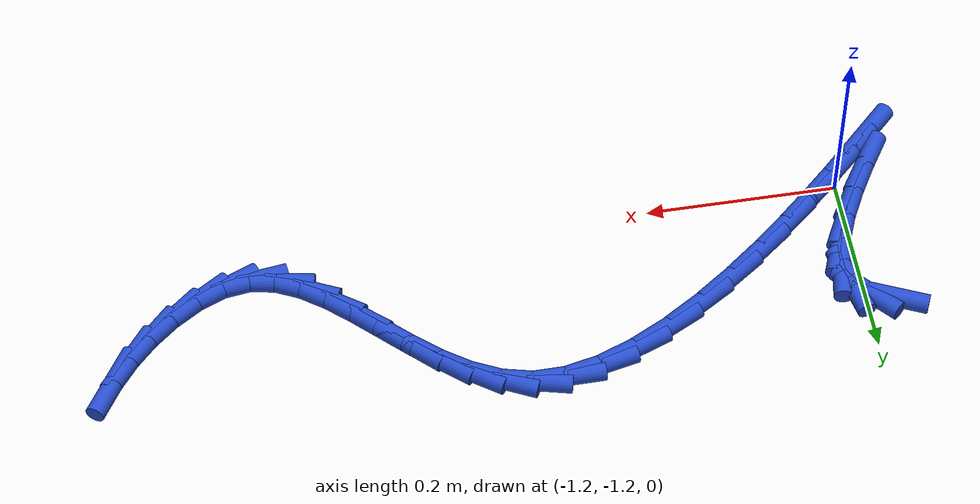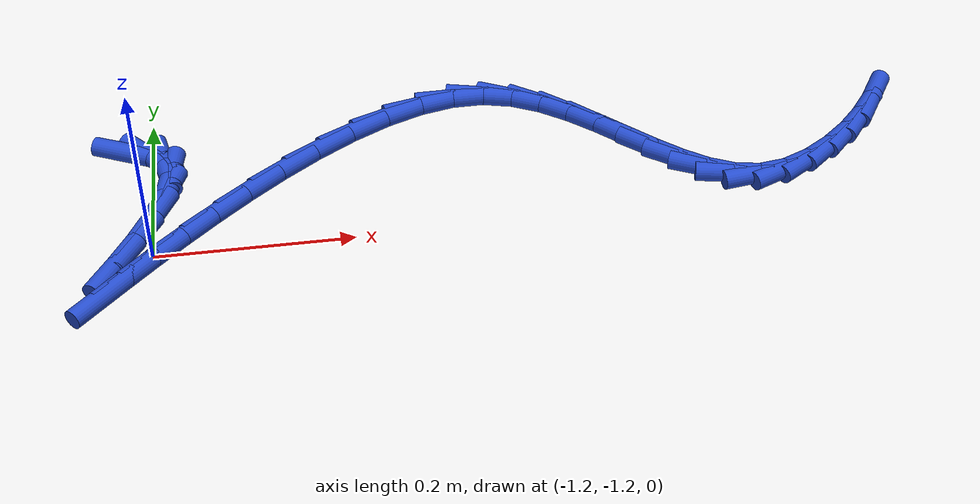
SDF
<sdf version="1.6">
 <world name="default">
  <model name="ground_plane">
   <static>1</static>
   <link name="link">
    <collision name="collision">
     <geometry><plane><normal>0 0 1</normal><size>100 100</size></plane></geometry>
     <surface><friction><ode><mu>100</mu><mu2>50</mu2></ode></friction></surface>
    </collision>
    <visual name="visual">
     <cast_shadows>0</cast_shadows>
     <geometry><plane><normal>0 0 1</normal><size>100 100</size></plane></geometry>
     <material>
      <script><uri>file://media/materials/scripts/gazebo.material</uri><name>Gazebo/WhiteGlow</name></script>
     </material>
    </visual>
   </link>
  </model>
  <model name="line">
   <link name="link_210">
    <pose>-1.2225279009601688 -1.0498489963877908 0.01 0 1.57 -0.4290302587245111</pose>
    <collision name="collision">
     <geometry><cylinder><radius>0.01</radius><length>0.08</length></cylinder></geometry>
    </collision>
    <visual name="visual">
     <material>
      <script><name>Gazebo/Blue</name><uri>file://media/materials/scripts/gazebo.material</uri></script>
     </material>
     <geometry><cylinder><radius>0.01</radius><length>0.08</length></cylinder></geometry>
    </visual>
   </link>
   <link name="link_211">
    <pose>-1.2009225524633869 -1.0597323162773784 0.01 0 1.57 -0.8404976839779542</pose>
    <collision name="collision">
     <geometry><cylinder><radius>0.01</radius><length>0.08</length></cylinder></geometry>
    </collision>
    <visual name="visual">
     <material>
      <script><name>Gazebo/Blue</name><uri>file://media/materials/scripts/gazebo.material</uri></script>
     </material>
     <geometry><cylinder><radius>0.01</radius><length>0.08</length></cylinder></geometry>
    </visual>
   </link>
   <link name="link_212">
    <pose>-1.1873392073120013 -1.0749015181759876 0.01 0 1.57 -1.3666802365372464</pose>
    <collision name="collision">
     <geometry><cylinder><radius>0.01</radius><length>0.08</length></cylinder></geometry>
    </collision>
    <visual name="visual">
     <material>
      <script><name>Gazebo/Blue</name><uri>file://media/materials/scripts/gazebo.material</uri></script>
     </material>
     <geometry><cylinder><radius>0.01</radius><length>0.08</length></cylinder></geometry>
    </visual>
   </link>
   <link name="link_213">
    <pose>-1.1829490584594335 -1.096110083108619 0.01 0 1.57 1.386940928968811</pose>
    <collision name="collision">
     <geometry><cylinder><radius>0.01</radius><length>0.08</length></cylinder></geometry>
    </collision>
    <visual name="visual">
     <material>
      <script><name>Gazebo/Blue</name><uri>file://media/materials/scripts/gazebo.material</uri></script>
     </material>
     <geometry><cylinder><radius>0.01</radius><length>0.08</length></cylinder></geometry>
    </visual>
   </link>
   <link name="link_214">
    <pose>-1.1880140870052704 -1.1233479496688061 0.01 0 1.57 1.1951503084563095</pose>
    <collision name="collision">
     <geometry><cylinder><radius>0.01</radius><length>0.08</length></cylinder></geometry>
    </collision>
    <visual name="visual">
     <material>
      <script><name>Gazebo/Blue</name><uri>file://media/materials/scripts/gazebo.material</uri></script>
     </material>
     <geometry><cylinder><radius>0.01</radius><length>0.08</length></cylinder></geometry>
    </visual>
   </link>
   <link name="link_215">
    <pose>-1.2003045617299777 -1.154512553944051 0.01 0 1.57 1.093843876870561</pose>
    <collision name="collision">
     <geometry><cylinder><radius>0.01</radius><length>0.08</length></cylinder></geometry>
    </collision>
    <visual name="visual">
     <material>
      <script><name>Gazebo/Blue</name><uri>file://media/materials/scripts/gazebo.material</uri></script>
     </material>
     <geometry><cylinder><radius>0.01</radius><length>0.08</length></cylinder></geometry>
    </visual>
   </link>
   <link name="link_216">
    <pose>-1.2171677199102457 -1.187146076531491 0.01 0 1.57 1.0351233015792394</pose>
    <collision name="collision">
     <geometry><cylinder><radius>0.01</radius><length>0.08</length></cylinder></geometry>
    </collision>
    <visual name="visual">
     <material>
      <script><name>Gazebo/Blue</name><uri>file://media/materials/scripts/gazebo.material</uri></script>
     </material>
     <geometry><cylinder><radius>0.01</radius><length>0.08</length></cylinder></geometry>
    </visual>
   </link>
   <link name="link_217">
    <pose>-1.235950798822768 -1.2187906980282661 0.01 0 1.57 1.0013930658920076</pose>
    <collision name="collision">
     <geometry><cylinder><radius>0.01</radius><length>0.08</length></cylinder></geometry>
    </collision>
    <visual name="visual">
     <material>
      <script><name>Gazebo/Blue</name><uri>file://media/materials/scripts/gazebo.material</uri></script>
     </material>
     <geometry><cylinder><radius>0.01</radius><length>0.08</length></cylinder></geometry>
    </visual>
   </link>
   <link name="link_224">
    <pose>-1.2457346479555746 -1.2579630456814002 0.01 0 1.57 0.777487522542488</pose>
    <collision name="collision">
     <geometry><cylinder><radius>0.01</radius><length>0.08</length></cylinder></geometry>
    </collision>
    <visual name="visual">
     <material>
      <script><name>Gazebo/Blue</name><uri>file://media/materials/scripts/gazebo.material</uri></script>
     </material>
     <geometry><cylinder><radius>0.01</radius><length>0.08</length></cylinder></geometry>
    </visual>
   </link>
   <link name="link_225">
    <pose>-1.2242542176674498 -1.2368198029956556 0.01 0 1.57 0.7687051424640068</pose>
    <collision name="collision">
     <geometry><cylinder><radius>0.01</radius><length>0.08</length></cylinder></geometry>
    </collision>
    <visual name="visual">
     <material>
      <script><name>Gazebo/Blue</name><uri>file://media/materials/scripts/gazebo.material</uri></script>
     </material>
     <geometry><cylinder><radius>0.01</radius><length>0.08</length></cylinder></geometry>
    </visual>
   </link>
   <link name="link_226">
    <pose>-1.198577857808363 -1.2119866773610657 0.01 0 1.57 0.7527573232052351</pose>
    <collision name="collision">
     <geometry><cylinder><radius>0.01</radius><length>0.08</length></cylinder></geometry>
    </collision>
    <visual name="visual">
     <material>
      <script><name>Gazebo/Blue</name><uri>file://media/materials/scripts/gazebo.material</uri></script>
     </material>
     <geometry><cylinder><radius>0.01</radius><length>0.08</length></cylinder></geometry>
    </visual>
   </link>
   <link name="link_227">
    <pose>-1.1693236663999103 -1.1845825191580435 0.01 0 1.57 0.7304744183479323</pose>
    <collision name="collision">
     <geometry><cylinder><radius>0.01</radius><length>0.08</length></cylinder></geometry>
    </collision>
    <visual name="visual">
     <material>
      <script><name>Gazebo/Blue</name><uri>file://media/materials/scripts/gazebo.material</uri></script>
     </material>
     <geometry><cylinder><radius>0.01</radius><length>0.08</length></cylinder></geometry>
    </visual>
   </link>
   <link name="link_228">
    <pose>-1.1371097414636884 -1.1557261787670026 0.01 0 1.57 0.7014190516438231</pose>
    <collision name="collision">
     <geometry><cylinder><radius>0.01</radius><length>0.08</length></cylinder></geometry>
    </collision>
    <visual name="visual">
     <material>
      <script><name>Gazebo/Blue</name><uri>file://media/materials/scripts/gazebo.material</uri></script>
     </material>
     <geometry><cylinder><radius>0.01</radius><length>0.08</length></cylinder></geometry>
    </visual>
   </link>
   <link name="link_229">
    <pose>-1.1025541810212922 -1.1265365065683546 0.01 0 1.57 0.6642481186216622</pose>
    <collision name="collision">
     <geometry><cylinder><radius>0.01</radius><length>0.08</length></cylinder></geometry>
    </collision>
    <visual name="visual">
     <material>
      <script><name>Gazebo/Blue</name><uri>file://media/materials/scripts/gazebo.material</uri></script>
     </material>
     <geometry><cylinder><radius>0.01</radius><length>0.08</length></cylinder></geometry>
    </visual>
   </link>
   <link name="link_230">
    <pose>-1.0662750830943188 -1.098132352942514 0.01 0 1.57 0.6166365440781894</pose>
    <collision name="collision">
     <geometry><cylinder><radius>0.01</radius><length>0.08</length></cylinder></geometry>
    </collision>
    <visual name="visual">
     <material>
      <script><name>Gazebo/Blue</name><uri>file://media/materials/scripts/gazebo.material</uri></script>
     </material>
     <geometry><cylinder><radius>0.01</radius><length>0.08</length></cylinder></geometry>
    </visual>
   </link>
   <link name="link_231">
    <pose>-1.028890545704364 -1.071632568269893 0.01 0 1.57 0.5549194401242779</pose>
    <collision name="collision">
     <geometry><cylinder><radius>0.01</radius><length>0.08</length></cylinder></geometry>
    </collision>
    <visual name="visual">
     <material>
      <script><name>Gazebo/Blue</name><uri>file://media/materials/scripts/gazebo.material</uri></script>
     </material>
     <geometry><cylinder><radius>0.01</radius><length>0.08</length></cylinder></geometry>
    </visual>
   </link>
   <link name="link_232">
    <pose>-0.9910186668730241 -1.048156002930905 0.01 0 1.57 0.4734332162715074</pose>
    <collision name="collision">
     <geometry><cylinder><radius>0.01</radius><length>0.08</length></cylinder></geometry>
    </collision>
    <visual name="visual">
     <material>
      <script><name>Gazebo/Blue</name><uri>file://media/materials/scripts/gazebo.material</uri></script>
     </material>
     <geometry><cylinder><radius>0.01</radius><length>0.08</length></cylinder></geometry>
    </visual>
   </link>
   <link name="link_233">
    <pose>-0.9532775446218964 -1.0288215073059632 0.01 0 1.57 0.3635370367440239</pose>
    <collision name="collision">
     <geometry><cylinder><radius>0.01</radius><length>0.08</length></cylinder></geometry>
    </collision>
    <visual name="visual">
     <material>
      <script><name>Gazebo/Blue</name><uri>file://media/materials/scripts/gazebo.material</uri></script>
     </material>
     <geometry><cylinder><radius>0.01</radius><length>0.08</length></cylinder></geometry>
    </visual>
   </link>
   <link name="link_234">
    <pose>-0.9162852769725744 -1.0147479317754797 0.01 0 1.57 0.2126979087256779</pose>
    <collision name="collision">
     <geometry><cylinder><radius>0.01</radius><length>0.08</length></cylinder></geometry>
    </collision>
    <visual name="visual">
     <material>
      <script><name>Gazebo/Blue</name><uri>file://media/materials/scripts/gazebo.material</uri></script>
     </material>
     <geometry><cylinder><radius>0.01</radius><length>0.08</length></cylinder></geometry>
    </visual>
   </link>
   <link name="link_235">
    <pose>-0.8806599619466557 -1.007054126719868 0.01 0 1.57 0.005830317144094924</pose>
    <collision name="collision">
     <geometry><cylinder><radius>0.01</radius><length>0.08</length></cylinder></geometry>
    </collision>
    <visual name="visual">
     <material>
      <script><name>Gazebo/Blue</name><uri>file://media/materials/scripts/gazebo.material</uri></script>
     </material>
     <geometry><cylinder><radius>0.01</radius><length>0.08</length></cylinder></geometry>
    </visual>
   </link>
   <link name="link_236">
    <pose>-0.8470193599108852 -1.0068579891186673 0.01 0 1.57 -0.2428520662603285</pose>
    <collision name="collision">
     <geometry><cylinder><radius>0.01</radius><length>0.08</length></cylinder></geometry>
    </collision>
    <visual name="visual">
     <material>
      <script><name>Gazebo/Blue</name><uri>file://media/materials/scripts/gazebo.material</uri></script>
     </material>
     <geometry><cylinder><radius>0.01</radius><length>0.08</length></cylinder></geometry>
    </visual>
   </link>
   <link name="link_237">
    <pose>-0.815743553541309 -1.0146063101839393 0.01 0 1.57 -0.45540186484604367</pose>
    <collision name="collision">
     <geometry><cylinder><radius>0.01</radius><length>0.08</length></cylinder></geometry>
    </collision>
    <visual name="visual">
     <material>
      <script><name>Gazebo/Blue</name><uri>file://media/materials/scripts/gazebo.material</uri></script>
     </material>
     <geometry><cylinder><radius>0.01</radius><length>0.08</length></cylinder></geometry>
    </visual>
   </link>
   <link name="link_238">
    <pose>-0.7865586070675527 -1.0288991972840138 0.01 0 1.57 -0.6079607041883709</pose>
    <collision name="collision">
     <geometry><cylinder><radius>0.01</radius><length>0.08</length></cylinder></geometry>
    </collision>
    <visual name="visual">
     <material>
      <script><name>Gazebo/Blue</name><uri>file://media/materials/scripts/gazebo.material</uri></script>
     </material>
     <geometry><cylinder><radius>0.01</radius><length>0.08</length></cylinder></geometry>
    </visual>
   </link>
   <link name="link_239">
    <pose>-0.7590790655055034 -1.0480218725857335 0.01 0 1.57 -0.7045391753749367</pose>
    <collision name="collision">
     <geometry><cylinder><radius>0.01</radius><length>0.08</length></cylinder></geometry>
    </collision>
    <visual name="visual">
     <material>
      <script><name>Gazebo/Blue</name><uri>file://media/materials/scripts/gazebo.material</uri></script>
     </material>
     <geometry><cylinder><radius>0.01</radius><length>0.08</length></cylinder></geometry>
    </visual>
   </link>
   <link name="link_240">
    <pose>-0.7329194738710485 -1.0702595582559429 0.01 0 1.57 -0.7529273747123798</pose>
    <collision name="collision">
     <geometry><cylinder><radius>0.01</radius><length>0.08</length></cylinder></geometry>
    </collision>
    <visual name="visual">
     <material>
      <script><name>Gazebo/Blue</name><uri>file://media/materials/scripts/gazebo.material</uri></script>
     </material>
     <geometry><cylinder><radius>0.01</radius><length>0.08</length></cylinder></geometry>
    </visual>
   </link>
   <link name="link_241">
    <pose>-0.7076943771800747 -1.0938974764614846 0.01 0 1.57 -0.7572243723362605</pose>
    <collision name="collision">
     <geometry><cylinder><radius>0.01</radius><length>0.08</length></cylinder></geometry>
    </collision>
    <visual name="visual">
     <material>
      <script><name>Gazebo/Blue</name><uri>file://media/materials/scripts/gazebo.material</uri></script>
     </material>
     <geometry><cylinder><radius>0.01</radius><length>0.08</length></cylinder></geometry>
    </visual>
   </link>
   <link name="link_242">
    <pose>-0.6830183204484691 -1.1172208493692024 0.01 0 1.57 -0.715252222565398</pose>
    <collision name="collision">
     <geometry><cylinder><radius>0.01</radius><length>0.08</length></cylinder></geometry>
    </collision>
    <visual name="visual">
     <material>
      <script><name>Gazebo/Blue</name><uri>file://media/materials/scripts/gazebo.material</uri></script>
     </material>
     <geometry><cylinder><radius>0.01</radius><length>0.08</length></cylinder></geometry>
    </visual>
   </link>
   <link name="link_243">
    <pose>-0.6585058486921196 -1.138514899145941 0.01 0 1.57 -0.6170984875265781</pose>
    <collision name="collision">
     <geometry><cylinder><radius>0.01</radius><length>0.08</length></cylinder></geometry>
    </collision>
    <visual name="visual">
     <material>
      <script><name>Gazebo/Blue</name><uri>file://media/materials/scripts/gazebo.material</uri></script>
     </material>
     <geometry><cylinder><radius>0.01</radius><length>0.08</length></cylinder></geometry>
    </visual>
   </link>
   <link name="link_244">
    <pose>-0.6337715069269128 -1.1560648479585431 0.01 0 1.57 -0.44517837924578935</pose>
    <collision name="collision">
     <geometry><cylinder><radius>0.01</radius><length>0.08</length></cylinder></geometry>
    </collision>
    <visual name="visual">
     <material>
      <script><name>Gazebo/Blue</name><uri>file://media/materials/scripts/gazebo.material</uri></script>
     </material>
     <geometry><cylinder><radius>0.01</radius><length>0.08</length></cylinder></geometry>
    </visual>
   </link>
   <link name="link_245">
    <pose>-0.608429840168736 -1.168155917973852 0.01 0 1.57 -0.1846033421871102</pose>
    <collision name="collision">
     <geometry><cylinder><radius>0.01</radius><length>0.08</length></cylinder></geometry>
    </collision>
    <visual name="visual">
     <material>
      <script><name>Gazebo/Blue</name><uri>file://media/materials/scripts/gazebo.material</uri></script>
     </material>
     <geometry><cylinder><radius>0.01</radius><length>0.08</length></cylinder></geometry>
    </visual>
   </link>
   <link name="link_246">
    <pose>-0.5820953934334766 -1.1730733313587127 0.01 0 1.57 0.13885543567299163</pose>
    <collision name="collision">
     <geometry><cylinder><radius>0.01</radius><length>0.08</length></cylinder></geometry>
    </collision>
    <visual name="visual">
     <material>
      <script><name>Gazebo/Blue</name><uri>file://media/materials/scripts/gazebo.material</uri></script>
     </material>
     <geometry><cylinder><radius>0.01</radius><length>0.08</length></cylinder></geometry>
    </visual>
   </link>
   <link name="link_247">
    <pose>-0.5544328010927407 -1.1692073516159747 0.01 0 1.57 0.4038125348675331</pose>
    <collision name="collision">
     <geometry><cylinder><radius>0.01</radius><length>0.08</length></cylinder></geometry>
    </collision>
    <visual name="visual">
     <material>
      <script><name>Gazebo/Blue</name><uri>file://media/materials/scripts/gazebo.material</uri></script>
     </material>
     <geometry><cylinder><radius>0.01</radius><length>0.08</length></cylinder></geometry>
    </visual>
   </link>
   <link name="link_248">
    <pose>-0.5261416966722386 -1.1571187172396724 0.01 0 1.57 0.576331420790927</pose>
    <collision name="collision">
     <geometry><cylinder><radius>0.01</radius><length>0.08</length></cylinder></geometry>
    </collision>
    <visual name="visual">
     <material>
      <script><name>Gazebo/Blue</name><uri>file://media/materials/scripts/gazebo.material</uri></script>
     </material>
     <geometry><cylinder><radius>0.01</radius><length>0.08</length></cylinder></geometry>
    </visual>
   </link>
   <link name="link_249">
    <pose>-0.49889557836521475 -1.1394104378670622 0.01 0 1.57 0.7013228490824359</pose>
    <collision name="collision">
     <geometry><cylinder><radius>0.01</radius><length>0.08</length></cylinder></geometry>
    </collision>
    <visual name="visual">
     <material>
      <script><name>Gazebo/Blue</name><uri>file://media/materials/scripts/gazebo.material</uri></script>
     </material>
     <geometry><cylinder><radius>0.01</radius><length>0.08</length></cylinder></geometry>
    </visual>
   </link>
   <link name="link_250">
    <pose>-0.47430630677286423 -1.1186435132616657 0.01 0 1.57 0.8125729540507746</pose>
    <collision name="collision">
     <geometry><cylinder><radius>0.01</radius><length>0.08</length></cylinder></geometry>
    </collision>
    <visual name="visual">
     <material>
      <script><name>Gazebo/Blue</name><uri>file://media/materials/scripts/gazebo.material</uri></script>
     </material>
     <geometry><cylinder><radius>0.01</radius><length>0.08</length></cylinder></geometry>
    </visual>
   </link>
   <link name="link_251">
    <pose>-0.4528191832254154 -1.095955648057977 0.01 0 1.57 0.9168660336696909</pose>
    <collision name="collision">
     <geometry><cylinder><radius>0.01</radius><length>0.08</length></cylinder></geometry>
    </collision>
    <visual name="visual">
     <material>
      <script><name>Gazebo/Blue</name><uri>file://media/materials/scripts/gazebo.material</uri></script>
     </material>
     <geometry><cylinder><radius>0.01</radius><length>0.08</length></cylinder></geometry>
    </visual>
   </link>
   <link name="link_252">
    <pose>-0.4341220969376883 -1.0715604438454454 0.01 0 1.57 1.0110424832855691</pose>
    <collision name="collision">
     <geometry><cylinder><radius>0.01</radius><length>0.08</length></cylinder></geometry>
    </collision>
    <visual name="visual">
     <material>
      <script><name>Gazebo/Blue</name><uri>file://media/materials/scripts/gazebo.material</uri></script>
     </material>
     <geometry><cylinder><radius>0.01</radius><length>0.08</length></cylinder></geometry>
    </visual>
   </link>
  </model>
 </world>
</sdf>
